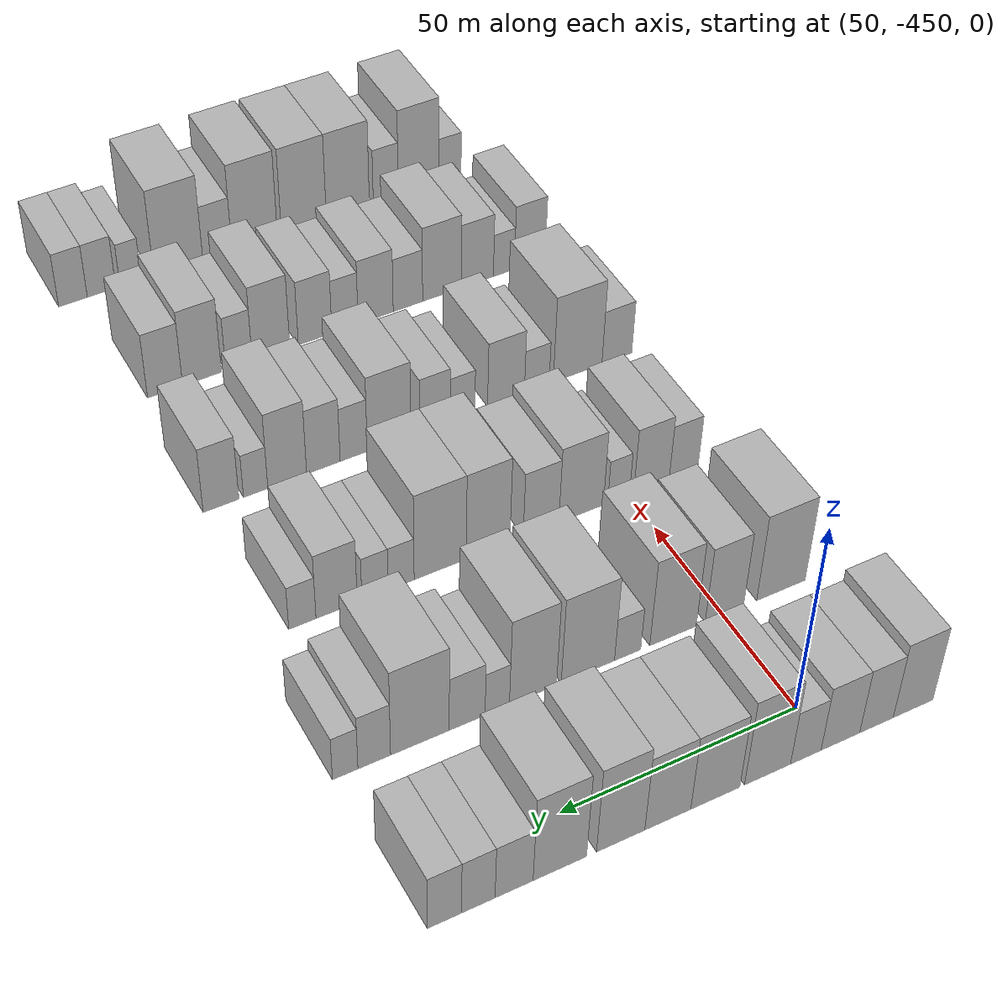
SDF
<sdf version="1.6">
 <world name="default">
  <model name="building_13">
   <static>1</static>
   <pose>50.0000 -469.1196 0 0.000000 0.000000 0.000000</pose>
   <link name="link">
    <pose>0 0 10.50 0 0 0</pose>
    <collision name="collision"><geometry><box><size>20.0000 8.9004 21.0000</size></box></geometry></collision>
    <visual name="visual">
     <cast_shadows>0</cast_shadows>
     <geometry><box><size>20.0000 8.9004 21.0000</size></box></geometry>
     <material>
      <script>
       <uri>model://HANNAS_wall/materials/scripts</uri>
       <uri>model://HANNAS_wall/materials/textures</uri>
       <name>vrc/HANNAS_wall</name>
      </script>
     </material>
    </visual>
   </link>
  </model>
  <model name="building_14">
   <static>1</static>
   <pose>50.0000 -460.9430 0 0.000000 0.000000 0.000000</pose>
   <link name="link">
    <pose>0 0 9.00 0 0 0</pose>
    <collision name="collision"><geometry><box><size>20.0000 7.4529 18.0000</size></box></geometry></collision>
    <visual name="visual">
     <cast_shadows>0</cast_shadows>
     <geometry><box><size>20.0000 7.4529 18.0000</size></box></geometry>
     <material>
      <script>
       <uri>model://HANNAS_wall/materials/scripts</uri>
       <uri>model://HANNAS_wall/materials/textures</uri>
       <name>vrc/HANNAS_wall</name>
      </script>
     </material>
    </visual>
   </link>
  </model>
  <model name="building_15">
   <static>1</static>
   <pose>50.0000 -452.9711 0 0.000000 0.000000 0.000000</pose>
   <link name="link">
    <pose>0 0 9.00 0 0 0</pose>
    <collision name="collision"><geometry><box><size>20.0000 8.4909 18.0000</size></box></geometry></collision>
    <visual name="visual">
     <cast_shadows>0</cast_shadows>
     <geometry><box><size>20.0000 8.4909 18.0000</size></box></geometry>
     <material>
      <script>
       <uri>model://HANNAS_wall/materials/scripts</uri>
       <uri>model://HANNAS_wall/materials/textures</uri>
       <name>vrc/HANNAS_wall</name>
      </script>
     </material>
    </visual>
   </link>
  </model>
  <model name="building_16">
   <static>1</static>
   <pose>50.0000 -445.4152 0 0.000000 0.000000 0.000000</pose>
   <link name="link">
    <pose>0 0 7.50 0 0 0</pose>
    <collision name="collision"><geometry><box><size>20.0000 6.6210 15.0000</size></box></geometry></collision>
    <visual name="visual">
     <cast_shadows>0</cast_shadows>
     <geometry><box><size>20.0000 6.6210 15.0000</size></box></geometry>
     <material>
      <script>
       <uri>model://HANNAS_wall/materials/scripts</uri>
       <uri>model://HANNAS_wall/materials/textures</uri>
       <name>vrc/HANNAS_wall</name>
      </script>
     </material>
    </visual>
   </link>
  </model>
  <model name="building_17">
   <static>1</static>
   <pose>50.0000 -437.1889 0 0.000000 0.000000 0.000000</pose>
   <link name="link">
    <pose>0 0 12.00 0 0 0</pose>
    <collision name="collision"><geometry><box><size>20.0000 9.8315 24.0000</size></box></geometry></collision>
    <visual name="visual">
     <cast_shadows>0</cast_shadows>
     <geometry><box><size>20.0000 9.8315 24.0000</size></box></geometry>
     <material>
      <script>
       <uri>model://HANNAS_wall/materials/scripts</uri>
       <uri>model://HANNAS_wall/materials/textures</uri>
       <name>vrc/HANNAS_wall</name>
      </script>
     </material>
    </visual>
   </link>
  </model>
  <model name="building_18">
   <static>1</static>
   <pose>50.0000 -426.1161 0 0.000000 0.000000 0.000000</pose>
   <link name="link">
    <pose>0 0 10.50 0 0 0</pose>
    <collision name="collision"><geometry><box><size>20.0000 10.3142 21.0000</size></box></geometry></collision>
    <visual name="visual">
     <cast_shadows>0</cast_shadows>
     <geometry><box><size>20.0000 10.3142 21.0000</size></box></geometry>
     <material>
      <script>
       <uri>model://HANNAS_wall/materials/scripts</uri>
       <uri>model://HANNAS_wall/materials/textures</uri>
       <name>vrc/HANNAS_wall</name>
      </script>
     </material>
    </visual>
   </link>
  </model>
  <model name="building_19">
   <static>1</static>
   <pose>50.0000 -416.2049 0 0.000000 0.000000 0.000000</pose>
   <link name="link">
    <pose>0 0 10.50 0 0 0</pose>
    <collision name="collision"><geometry><box><size>20.0000 9.5082 21.0000</size></box></geometry></collision>
    <visual name="visual">
     <cast_shadows>0</cast_shadows>
     <geometry><box><size>20.0000 9.5082 21.0000</size></box></geometry>
     <material>
      <script>
       <uri>model://HANNAS_wall/materials/scripts</uri>
       <uri>model://HANNAS_wall/materials/textures</uri>
       <name>vrc/HANNAS_wall</name>
      </script>
     </material>
    </visual>
   </link>
  </model>
  <model name="building_20">
   <static>1</static>
   <pose>50.0000 -406.5323 0 0.000000 0.000000 0.000000</pose>
   <link name="link">
    <pose>0 0 12.00 0 0 0</pose>
    <collision name="collision"><geometry><box><size>20.0000 9.8371 24.0000</size></box></geometry></collision>
    <visual name="visual">
     <cast_shadows>0</cast_shadows>
     <geometry><box><size>20.0000 9.8371 24.0000</size></box></geometry>
     <material>
      <script>
       <uri>model://HANNAS_wall/materials/scripts</uri>
       <uri>model://HANNAS_wall/materials/textures</uri>
       <name>vrc/HANNAS_wall</name>
      </script>
     </material>
    </visual>
   </link>
  </model>
  <model name="building_21">
   <static>1</static>
   <pose>50.0000 -394.2754 0 0.000000 0.000000 0.000000</pose>
   <link name="link">
    <pose>0 0 12.00 0 0 0</pose>
    <collision name="collision"><geometry><box><size>20.0000 10.6766 24.0000</size></box></geometry></collision>
    <visual name="visual">
     <cast_shadows>0</cast_shadows>
     <geometry><box><size>20.0000 10.6766 24.0000</size></box></geometry>
     <material>
      <script>
       <uri>model://HANNAS_wall/materials/scripts</uri>
       <uri>model://HANNAS_wall/materials/textures</uri>
       <name>vrc/HANNAS_wall</name>
      </script>
     </material>
    </visual>
   </link>
  </model>
  <model name="building_22">
   <static>1</static>
   <pose>50.0000 -385.2008 0 0.000000 0.000000 0.000000</pose>
   <link name="link">
    <pose>0 0 7.50 0 0 0</pose>
    <collision name="collision"><geometry><box><size>20.0000 7.4728 15.0000</size></box></geometry></collision>
    <visual name="visual">
     <cast_shadows>0</cast_shadows>
     <geometry><box><size>20.0000 7.4728 15.0000</size></box></geometry>
     <material>
      <script>
       <uri>model://HANNAS_wall/materials/scripts</uri>
       <uri>model://HANNAS_wall/materials/textures</uri>
       <name>vrc/HANNAS_wall</name>
      </script>
     </material>
    </visual>
   </link>
  </model>
  <model name="building_23">
   <static>1</static>
   <pose>50.0000 -378.1926 0 0.000000 0.000000 0.000000</pose>
   <link name="link">
    <pose>0 0 7.50 0 0 0</pose>
    <collision name="collision"><geometry><box><size>20.0000 6.5435 15.0000</size></box></geometry></collision>
    <visual name="visual">
     <cast_shadows>0</cast_shadows>
     <geometry><box><size>20.0000 6.5435 15.0000</size></box></geometry>
     <material>
      <script>
       <uri>model://HANNAS_wall/materials/scripts</uri>
       <uri>model://HANNAS_wall/materials/textures</uri>
       <name>vrc/HANNAS_wall</name>
      </script>
     </material>
    </visual>
   </link>
  </model>
  <model name="building_24">
   <static>1</static>
   <pose>50.0000 -371.6508 0 0.000000 0.000000 0.000000</pose>
   <link name="link">
    <pose>0 0 7.50 0 0 0</pose>
    <collision name="collision"><geometry><box><size>20.0000 6.5402 15.0000</size></box></geometry></collision>
    <visual name="visual">
     <cast_shadows>0</cast_shadows>
     <geometry><box><size>20.0000 6.5402 15.0000</size></box></geometry>
     <material>
      <script>
       <uri>model://HANNAS_wall/materials/scripts</uri>
       <uri>model://HANNAS_wall/materials/textures</uri>
       <name>vrc/HANNAS_wall</name>
      </script>
     </material>
    </visual>
   </link>
  </model>
  <model name="building_143">
   <static>1</static>
   <pose>85.0000 -463.2168 0 0.000000 0.000000 0.000000</pose>
   <link name="link">
    <pose>0 0 12.00 0 0 0</pose>
    <collision name="collision"><geometry><box><size>20.0000 11.1497 24.0000</size></box></geometry></collision>
    <visual name="visual">
     <cast_shadows>0</cast_shadows>
     <geometry><box><size>20.0000 11.1497 24.0000</size></box></geometry>
     <material>
      <script>
       <uri>model://HANNAS_wall/materials/scripts</uri>
       <uri>model://HANNAS_wall/materials/textures</uri>
       <name>vrc/HANNAS_wall</name>
      </script>
     </material>
    </visual>
   </link>
  </model>
  <model name="building_144">
   <static>1</static>
   <pose>85.0000 -450.3165 0 0.000000 0.000000 0.000000</pose>
   <link name="link">
    <pose>0 0 10.50 0 0 0</pose>
    <collision name="collision"><geometry><box><size>20.0000 8.6507 21.0000</size></box></geometry></collision>
    <visual name="visual">
     <cast_shadows>0</cast_shadows>
     <geometry><box><size>20.0000 8.6507 21.0000</size></box></geometry>
     <material>
      <script>
       <uri>model://HANNAS_wall/materials/scripts</uri>
       <uri>model://HANNAS_wall/materials/textures</uri>
       <name>vrc/HANNAS_wall</name>
      </script>
     </material>
    </visual>
   </link>
  </model>
  <model name="building_145">
   <static>1</static>
   <pose>85.0000 -438.8245 0 0.000000 0.000000 0.000000</pose>
   <link name="link">
    <pose>0 0 12.00 0 0 0</pose>
    <collision name="collision"><geometry><box><size>20.0000 10.3333 24.0000</size></box></geometry></collision>
    <visual name="visual">
     <cast_shadows>0</cast_shadows>
     <geometry><box><size>20.0000 10.3333 24.0000</size></box></geometry>
     <material>
      <script>
       <uri>model://HANNAS_wall/materials/scripts</uri>
       <uri>model://HANNAS_wall/materials/textures</uri>
       <name>vrc/HANNAS_wall</name>
      </script>
     </material>
    </visual>
   </link>
  </model>
  <model name="building_146">
   <static>1</static>
   <pose>85.0000 -428.7916 0 0.000000 0.000000 0.000000</pose>
   <link name="link">
    <pose>0 0 6.00 0 0 0</pose>
    <collision name="collision"><geometry><box><size>20.0000 5.7325 12.0000</size></box></geometry></collision>
    <visual name="visual">
     <cast_shadows>0</cast_shadows>
     <geometry><box><size>20.0000 5.7325 12.0000</size></box></geometry>
     <material>
      <script>
       <uri>model://HANNAS_wall/materials/scripts</uri>
       <uri>model://HANNAS_wall/materials/textures</uri>
       <name>vrc/HANNAS_wall</name>
      </script>
     </material>
    </visual>
   </link>
  </model>
  <model name="building_147">
   <static>1</static>
   <pose>85.0000 -420.1750 0 0.000000 0.000000 0.000000</pose>
   <link name="link">
    <pose>0 0 12.00 0 0 0</pose>
    <collision name="collision"><geometry><box><size>20.0000 11.5006 24.0000</size></box></geometry></collision>
    <visual name="visual">
     <cast_shadows>0</cast_shadows>
     <geometry><box><size>20.0000 11.5006 24.0000</size></box></geometry>
     <material>
      <script>
       <uri>model://HANNAS_wall/materials/scripts</uri>
       <uri>model://HANNAS_wall/materials/textures</uri>
       <name>vrc/HANNAS_wall</name>
      </script>
     </material>
    </visual>
   </link>
  </model>
  <model name="building_148">
   <static>1</static>
   <pose>85.0000 -408.4237 0 0.000000 0.000000 0.000000</pose>
   <link name="link">
    <pose>0 0 12.00 0 0 0</pose>
    <collision name="collision"><geometry><box><size>20.0000 10.0020 24.0000</size></box></geometry></collision>
    <visual name="visual">
     <cast_shadows>0</cast_shadows>
     <geometry><box><size>20.0000 10.0020 24.0000</size></box></geometry>
     <material>
      <script>
       <uri>model://HANNAS_wall/materials/scripts</uri>
       <uri>model://HANNAS_wall/materials/textures</uri>
       <name>vrc/HANNAS_wall</name>
      </script>
     </material>
    </visual>
   </link>
  </model>
  <model name="building_149">
   <static>1</static>
   <pose>85.0000 -400.8670 0 0.000000 0.000000 0.000000</pose>
   <link name="link">
    <pose>0 0 6.00 0 0 0</pose>
    <collision name="collision"><geometry><box><size>20.0000 5.1114 12.0000</size></box></geometry></collision>
    <visual name="visual">
     <cast_shadows>0</cast_shadows>
     <geometry><box><size>20.0000 5.1114 12.0000</size></box></geometry>
     <material>
      <script>
       <uri>model://HANNAS_wall/materials/scripts</uri>
       <uri>model://HANNAS_wall/materials/textures</uri>
       <name>vrc/HANNAS_wall</name>
      </script>
     </material>
    </visual>
   </link>
  </model>
  <model name="building_150">
   <static>1</static>
   <pose>85.0000 -394.5893 0 0.000000 0.000000 0.000000</pose>
   <link name="link">
    <pose>0 0 7.50 0 0 0</pose>
    <collision name="collision"><geometry><box><size>20.0000 7.4440 15.0000</size></box></geometry></collision>
    <visual name="visual">
     <cast_shadows>0</cast_shadows>
     <geometry><box><size>20.0000 7.4440 15.0000</size></box></geometry>
     <material>
      <script>
       <uri>model://HANNAS_wall/materials/scripts</uri>
       <uri>model://HANNAS_wall/materials/textures</uri>
       <name>vrc/HANNAS_wall</name>
      </script>
     </material>
    </visual>
   </link>
  </model>
  <model name="building_151">
   <static>1</static>
   <pose>85.0000 -384.8868 0 0.000000 0.000000 0.000000</pose>
   <link name="link">
    <pose>0 0 12.00 0 0 0</pose>
    <collision name="collision"><geometry><box><size>20.0000 11.9609 24.0000</size></box></geometry></collision>
    <visual name="visual">
     <cast_shadows>0</cast_shadows>
     <geometry><box><size>20.0000 11.9609 24.0000</size></box></geometry>
     <material>
      <script>
       <uri>model://HANNAS_wall/materials/scripts</uri>
       <uri>model://HANNAS_wall/materials/textures</uri>
       <name>vrc/HANNAS_wall</name>
      </script>
     </material>
    </visual>
   </link>
  </model>
  <model name="building_152">
   <static>1</static>
   <pose>85.0000 -375.6154 0 0.000000 0.000000 0.000000</pose>
   <link name="link">
    <pose>0 0 7.50 0 0 0</pose>
    <collision name="collision"><geometry><box><size>20.0000 6.5819 15.0000</size></box></geometry></collision>
    <visual name="visual">
     <cast_shadows>0</cast_shadows>
     <geometry><box><size>20.0000 6.5819 15.0000</size></box></geometry>
     <material>
      <script>
       <uri>model://HANNAS_wall/materials/scripts</uri>
       <uri>model://HANNAS_wall/materials/textures</uri>
       <name>vrc/HANNAS_wall</name>
      </script>
     </material>
    </visual>
   </link>
  </model>
  <model name="building_153">
   <static>1</static>
   <pose>85.0000 -369.7769 0 0.000000 0.000000 0.000000</pose>
   <link name="link">
    <pose>0 0 6.00 0 0 0</pose>
    <collision name="collision"><geometry><box><size>20.0000 5.0952 12.0000</size></box></geometry></collision>
    <visual name="visual">
     <cast_shadows>0</cast_shadows>
     <geometry><box><size>20.0000 5.0952 12.0000</size></box></geometry>
     <material>
      <script>
       <uri>model://HANNAS_wall/materials/scripts</uri>
       <uri>model://HANNAS_wall/materials/textures</uri>
       <name>vrc/HANNAS_wall</name>
      </script>
     </material>
    </visual>
   </link>
  </model>
  <model name="building_268">
   <static>1</static>
   <pose>120.0000 -462.8415 0 0.000000 0.000000 0.000000</pose>
   <link name="link">
    <pose>0 0 7.50 0 0 0</pose>
    <collision name="collision"><geometry><box><size>20.0000 6.8305 15.0000</size></box></geometry></collision>
    <visual name="visual">
     <cast_shadows>0</cast_shadows>
     <geometry><box><size>20.0000 6.8305 15.0000</size></box></geometry>
     <material>
      <script>
       <uri>model://HANNAS_wall/materials/scripts</uri>
       <uri>model://HANNAS_wall/materials/textures</uri>
       <name>vrc/HANNAS_wall</name>
      </script>
     </material>
    </visual>
   </link>
  </model>
  <model name="building_269">
   <static>1</static>
   <pose>120.0000 -455.2532 0 0.000000 0.000000 0.000000</pose>
   <link name="link">
    <pose>0 0 9.00 0 0 0</pose>
    <collision name="collision"><geometry><box><size>20.0000 8.3460 18.0000</size></box></geometry></collision>
    <visual name="visual">
     <cast_shadows>0</cast_shadows>
     <geometry><box><size>20.0000 8.3460 18.0000</size></box></geometry>
     <material>
      <script>
       <uri>model://HANNAS_wall/materials/scripts</uri>
       <uri>model://HANNAS_wall/materials/textures</uri>
       <name>vrc/HANNAS_wall</name>
      </script>
     </material>
    </visual>
   </link>
  </model>
  <model name="building_270">
   <static>1</static>
   <pose>120.0000 -447.5410 0 0.000000 0.000000 0.000000</pose>
   <link name="link">
    <pose>0 0 6.00 0 0 0</pose>
    <collision name="collision"><geometry><box><size>20.0000 5.0785 12.0000</size></box></geometry></collision>
    <visual name="visual">
     <cast_shadows>0</cast_shadows>
     <geometry><box><size>20.0000 5.0785 12.0000</size></box></geometry>
     <material>
      <script>
       <uri>model://HANNAS_wall/materials/scripts</uri>
       <uri>model://HANNAS_wall/materials/textures</uri>
       <name>vrc/HANNAS_wall</name>
      </script>
     </material>
    </visual>
   </link>
  </model>
  <model name="building_271">
   <static>1</static>
   <pose>120.0000 -438.8805 0 0.000000 0.000000 0.000000</pose>
   <link name="link">
    <pose>0 0 10.50 0 0 0</pose>
    <collision name="collision"><geometry><box><size>20.0000 10.2425 21.0000</size></box></geometry></collision>
    <visual name="visual">
     <cast_shadows>0</cast_shadows>
     <geometry><box><size>20.0000 10.2425 21.0000</size></box></geometry>
     <material>
      <script>
       <uri>model://HANNAS_wall/materials/scripts</uri>
       <uri>model://HANNAS_wall/materials/textures</uri>
       <name>vrc/HANNAS_wall</name>
      </script>
     </material>
    </visual>
   </link>
  </model>
  <model name="building_272">
   <static>1</static>
   <pose>120.0000 -429.7217 0 0.000000 0.000000 0.000000</pose>
   <link name="link">
    <pose>0 0 9.00 0 0 0</pose>
    <collision name="collision"><geometry><box><size>20.0000 8.0750 18.0000</size></box></geometry></collision>
    <visual name="visual">
     <cast_shadows>0</cast_shadows>
     <geometry><box><size>20.0000 8.0750 18.0000</size></box></geometry>
     <material>
      <script>
       <uri>model://HANNAS_wall/materials/scripts</uri>
       <uri>model://HANNAS_wall/materials/textures</uri>
       <name>vrc/HANNAS_wall</name>
      </script>
     </material>
    </visual>
   </link>
  </model>
  <model name="building_273">
   <static>1</static>
   <pose>120.0000 -417.7968 0 0.000000 0.000000 0.000000</pose>
   <link name="link">
    <pose>0 0 12.00 0 0 0</pose>
    <collision name="collision"><geometry><box><size>20.0000 9.7749 24.0000</size></box></geometry></collision>
    <visual name="visual">
     <cast_shadows>0</cast_shadows>
     <geometry><box><size>20.0000 9.7749 24.0000</size></box></geometry>
     <material>
      <script>
       <uri>model://HANNAS_wall/materials/scripts</uri>
       <uri>model://HANNAS_wall/materials/textures</uri>
       <name>vrc/HANNAS_wall</name>
      </script>
     </material>
    </visual>
   </link>
  </model>
  <model name="building_274">
   <static>1</static>
   <pose>120.0000 -407.2142 0 0.000000 0.000000 0.000000</pose>
   <link name="link">
    <pose>0 0 12.00 0 0 0</pose>
    <collision name="collision"><geometry><box><size>20.0000 11.3903 24.0000</size></box></geometry></collision>
    <visual name="visual">
     <cast_shadows>0</cast_shadows>
     <geometry><box><size>20.0000 11.3903 24.0000</size></box></geometry>
     <material>
      <script>
       <uri>model://HANNAS_wall/materials/scripts</uri>
       <uri>model://HANNAS_wall/materials/textures</uri>
       <name>vrc/HANNAS_wall</name>
      </script>
     </material>
    </visual>
   </link>
  </model>
  <model name="building_275">
   <static>1</static>
   <pose>120.0000 -398.7075 0 0.000000 0.000000 0.000000</pose>
   <link name="link">
    <pose>0 0 6.00 0 0 0</pose>
    <collision name="collision"><geometry><box><size>20.0000 5.6232 12.0000</size></box></geometry></collision>
    <visual name="visual">
     <cast_shadows>0</cast_shadows>
     <geometry><box><size>20.0000 5.6232 12.0000</size></box></geometry>
     <material>
      <script>
       <uri>model://HANNAS_wall/materials/scripts</uri>
       <uri>model://HANNAS_wall/materials/textures</uri>
       <name>vrc/HANNAS_wall</name>
      </script>
     </material>
    </visual>
   </link>
  </model>
  <model name="building_276">
   <static>1</static>
   <pose>120.0000 -393.0673 0 0.000000 0.000000 0.000000</pose>
   <link name="link">
    <pose>0 0 6.00 0 0 0</pose>
    <collision name="collision"><geometry><box><size>20.0000 5.6572 12.0000</size></box></geometry></collision>
    <visual name="visual">
     <cast_shadows>0</cast_shadows>
     <geometry><box><size>20.0000 5.6572 12.0000</size></box></geometry>
     <material>
      <script>
       <uri>model://HANNAS_wall/materials/scripts</uri>
       <uri>model://HANNAS_wall/materials/textures</uri>
       <name>vrc/HANNAS_wall</name>
      </script>
     </material>
    </visual>
   </link>
  </model>
  <model name="building_277">
   <static>1</static>
   <pose>120.0000 -384.8574 0 0.000000 0.000000 0.000000</pose>
   <link name="link">
    <pose>0 0 9.00 0 0 0</pose>
    <collision name="collision"><geometry><box><size>20.0000 8.7626 18.0000</size></box></geometry></collision>
    <visual name="visual">
     <cast_shadows>0</cast_shadows>
     <geometry><box><size>20.0000 8.7626 18.0000</size></box></geometry>
     <material>
      <script>
       <uri>model://HANNAS_wall/materials/scripts</uri>
       <uri>model://HANNAS_wall/materials/textures</uri>
       <name>vrc/HANNAS_wall</name>
      </script>
     </material>
    </visual>
   </link>
  </model>
  <model name="building_278">
   <static>1</static>
   <pose>120.0000 -377.6113 0 0.000000 0.000000 0.000000</pose>
   <link name="link">
    <pose>0 0 6.00 0 0 0</pose>
    <collision name="collision"><geometry><box><size>20.0000 5.7295 12.0000</size></box></geometry></collision>
    <visual name="visual">
     <cast_shadows>0</cast_shadows>
     <geometry><box><size>20.0000 5.7295 12.0000</size></box></geometry>
     <material>
      <script>
       <uri>model://HANNAS_wall/materials/scripts</uri>
       <uri>model://HANNAS_wall/materials/textures</uri>
       <name>vrc/HANNAS_wall</name>
      </script>
     </material>
    </visual>
   </link>
  </model>
  <model name="building_390">
   <static>1</static>
   <pose>155.0000 -467.8347 0 0.000000 0.000000 0.000000</pose>
   <link name="link">
    <pose>0 0 7.50 0 0 0</pose>
    <collision name="collision"><geometry><box><size>20.0000 7.3731 15.0000</size></box></geometry></collision>
    <visual name="visual">
     <cast_shadows>0</cast_shadows>
     <geometry><box><size>20.0000 7.3731 15.0000</size></box></geometry>
     <material>
      <script>
       <uri>model://HANNAS_wall/materials/scripts</uri>
       <uri>model://HANNAS_wall/materials/textures</uri>
       <name>vrc/HANNAS_wall</name>
      </script>
     </material>
    </visual>
   </link>
  </model>
  <model name="building_391">
   <static>1</static>
   <pose>155.0000 -458.2091 0 0.000000 0.000000 0.000000</pose>
   <link name="link">
    <pose>0 0 12.00 0 0 0</pose>
    <collision name="collision"><geometry><box><size>20.0000 11.8781 24.0000</size></box></geometry></collision>
    <visual name="visual">
     <cast_shadows>0</cast_shadows>
     <geometry><box><size>20.0000 11.8781 24.0000</size></box></geometry>
     <material>
      <script>
       <uri>model://HANNAS_wall/materials/scripts</uri>
       <uri>model://HANNAS_wall/materials/textures</uri>
       <name>vrc/HANNAS_wall</name>
      </script>
     </material>
    </visual>
   </link>
  </model>
  <model name="building_392">
   <static>1</static>
   <pose>155.0000 -448.2878 0 0.000000 0.000000 0.000000</pose>
   <link name="link">
    <pose>0 0 6.00 0 0 0</pose>
    <collision name="collision"><geometry><box><size>20.0000 5.9645 12.0000</size></box></geometry></collision>
    <visual name="visual">
     <cast_shadows>0</cast_shadows>
     <geometry><box><size>20.0000 5.9645 12.0000</size></box></geometry>
     <material>
      <script>
       <uri>model://HANNAS_wall/materials/scripts</uri>
       <uri>model://HANNAS_wall/materials/textures</uri>
       <name>vrc/HANNAS_wall</name>
      </script>
     </material>
    </visual>
   </link>
  </model>
  <model name="building_393">
   <static>1</static>
   <pose>155.0000 -440.9150 0 0.000000 0.000000 0.000000</pose>
   <link name="link">
    <pose>0 0 9.00 0 0 0</pose>
    <collision name="collision"><geometry><box><size>20.0000 8.7811 18.0000</size></box></geometry></collision>
    <visual name="visual">
     <cast_shadows>0</cast_shadows>
     <geometry><box><size>20.0000 8.7811 18.0000</size></box></geometry>
     <material>
      <script>
       <uri>model://HANNAS_wall/materials/scripts</uri>
       <uri>model://HANNAS_wall/materials/textures</uri>
       <name>vrc/HANNAS_wall</name>
      </script>
     </material>
    </visual>
   </link>
  </model>
  <model name="building_394">
   <static>1</static>
   <pose>155.0000 -430.6221 0 0.000000 0.000000 0.000000</pose>
   <link name="link">
    <pose>0 0 6.00 0 0 0</pose>
    <collision name="collision"><geometry><box><size>20.0000 5.8048 12.0000</size></box></geometry></collision>
    <visual name="visual">
     <cast_shadows>0</cast_shadows>
     <geometry><box><size>20.0000 5.8048 12.0000</size></box></geometry>
     <material>
      <script>
       <uri>model://HANNAS_wall/materials/scripts</uri>
       <uri>model://HANNAS_wall/materials/textures</uri>
       <name>vrc/HANNAS_wall</name>
      </script>
     </material>
    </visual>
   </link>
  </model>
  <model name="building_395">
   <static>1</static>
   <pose>155.0000 -424.1557 0 0.000000 0.000000 0.000000</pose>
   <link name="link">
    <pose>0 0 7.50 0 0 0</pose>
    <collision name="collision"><geometry><box><size>20.0000 7.1279 15.0000</size></box></geometry></collision>
    <visual name="visual">
     <cast_shadows>0</cast_shadows>
     <geometry><box><size>20.0000 7.1279 15.0000</size></box></geometry>
     <material>
      <script>
       <uri>model://HANNAS_wall/materials/scripts</uri>
       <uri>model://HANNAS_wall/materials/textures</uri>
       <name>vrc/HANNAS_wall</name>
      </script>
     </material>
    </visual>
   </link>
  </model>
  <model name="building_396">
   <static>1</static>
   <pose>155.0000 -413.5880 0 0.000000 0.000000 0.000000</pose>
   <link name="link">
    <pose>0 0 10.50 0 0 0</pose>
    <collision name="collision"><geometry><box><size>20.0000 10.0075 21.0000</size></box></geometry></collision>
    <visual name="visual">
     <cast_shadows>0</cast_shadows>
     <geometry><box><size>20.0000 10.0075 21.0000</size></box></geometry>
     <material>
      <script>
       <uri>model://HANNAS_wall/materials/scripts</uri>
       <uri>model://HANNAS_wall/materials/textures</uri>
       <name>vrc/HANNAS_wall</name>
      </script>
     </material>
    </visual>
   </link>
  </model>
  <model name="building_397">
   <static>1</static>
   <pose>155.0000 -405.5013 0 0.000000 0.000000 0.000000</pose>
   <link name="link">
    <pose>0 0 7.50 0 0 0</pose>
    <collision name="collision"><geometry><box><size>20.0000 6.1658 15.0000</size></box></geometry></collision>
    <visual name="visual">
     <cast_shadows>0</cast_shadows>
     <geometry><box><size>20.0000 6.1658 15.0000</size></box></geometry>
     <material>
      <script>
       <uri>model://HANNAS_wall/materials/scripts</uri>
       <uri>model://HANNAS_wall/materials/textures</uri>
       <name>vrc/HANNAS_wall</name>
      </script>
     </material>
    </visual>
   </link>
  </model>
  <model name="building_398">
   <static>1</static>
   <pose>155.0000 -398.6455 0 0.000000 0.000000 0.000000</pose>
   <link name="link">
    <pose>0 0 9.00 0 0 0</pose>
    <collision name="collision"><geometry><box><size>20.0000 7.5459 18.0000</size></box></geometry></collision>
    <visual name="visual">
     <cast_shadows>0</cast_shadows>
     <geometry><box><size>20.0000 7.5459 18.0000</size></box></geometry>
     <material>
      <script>
       <uri>model://HANNAS_wall/materials/scripts</uri>
       <uri>model://HANNAS_wall/materials/textures</uri>
       <name>vrc/HANNAS_wall</name>
      </script>
     </material>
    </visual>
   </link>
  </model>
  <model name="building_399">
   <static>1</static>
   <pose>155.0000 -390.5653 0 0.000000 0.000000 0.000000</pose>
   <link name="link">
    <pose>0 0 10.50 0 0 0</pose>
    <collision name="collision"><geometry><box><size>20.0000 8.6145 21.0000</size></box></geometry></collision>
    <visual name="visual">
     <cast_shadows>0</cast_shadows>
     <geometry><box><size>20.0000 8.6145 21.0000</size></box></geometry>
     <material>
      <script>
       <uri>model://HANNAS_wall/materials/scripts</uri>
       <uri>model://HANNAS_wall/materials/textures</uri>
       <name>vrc/HANNAS_wall</name>
      </script>
     </material>
    </visual>
   </link>
  </model>
  <model name="building_400">
   <static>1</static>
   <pose>155.0000 -383.5804 0 0.000000 0.000000 0.000000</pose>
   <link name="link">
    <pose>0 0 6.00 0 0 0</pose>
    <collision name="collision"><geometry><box><size>20.0000 5.3552 12.0000</size></box></geometry></collision>
    <visual name="visual">
     <cast_shadows>0</cast_shadows>
     <geometry><box><size>20.0000 5.3552 12.0000</size></box></geometry>
     <material>
      <script>
       <uri>model://HANNAS_wall/materials/scripts</uri>
       <uri>model://HANNAS_wall/materials/textures</uri>
       <name>vrc/HANNAS_wall</name>
      </script>
     </material>
    </visual>
   </link>
  </model>
  <model name="building_401">
   <static>1</static>
   <pose>155.0000 -376.0094 0 0.000000 0.000000 0.000000</pose>
   <link name="link">
    <pose>0 0 9.00 0 0 0</pose>
    <collision name="collision"><geometry><box><size>20.0000 7.7868 18.0000</size></box></geometry></collision>
    <visual name="visual">
     <cast_shadows>0</cast_shadows>
     <geometry><box><size>20.0000 7.7868 18.0000</size></box></geometry>
     <material>
      <script>
       <uri>model://HANNAS_wall/materials/scripts</uri>
       <uri>model://HANNAS_wall/materials/textures</uri>
       <name>vrc/HANNAS_wall</name>
      </script>
     </material>
    </visual>
   </link>
  </model>
  <model name="building_518">
   <static>1</static>
   <pose>190.0000 -466.0492 0 0.000000 0.000000 0.000000</pose>
   <link name="link">
    <pose>0 0 9.00 0 0 0</pose>
    <collision name="collision"><geometry><box><size>20.0000 7.7904 18.0000</size></box></geometry></collision>
    <visual name="visual">
     <cast_shadows>0</cast_shadows>
     <geometry><box><size>20.0000 7.7904 18.0000</size></box></geometry>
     <material>
      <script>
       <uri>model://HANNAS_wall/materials/scripts</uri>
       <uri>model://HANNAS_wall/materials/textures</uri>
       <name>vrc/HANNAS_wall</name>
      </script>
     </material>
    </visual>
   </link>
  </model>
  <model name="building_519">
   <static>1</static>
   <pose>190.0000 -459.5002 0 0.000000 0.000000 0.000000</pose>
   <link name="link">
    <pose>0 0 6.00 0 0 0</pose>
    <collision name="collision"><geometry><box><size>20.0000 5.3077 12.0000</size></box></geometry></collision>
    <visual name="visual">
     <cast_shadows>0</cast_shadows>
     <geometry><box><size>20.0000 5.3077 12.0000</size></box></geometry>
     <material>
      <script>
       <uri>model://HANNAS_wall/materials/scripts</uri>
       <uri>model://HANNAS_wall/materials/textures</uri>
       <name>vrc/HANNAS_wall</name>
      </script>
     </material>
    </visual>
   </link>
  </model>
  <model name="building_520">
   <static>1</static>
   <pose>190.0000 -452.8224 0 0.000000 0.000000 0.000000</pose>
   <link name="link">
    <pose>0 0 9.00 0 0 0</pose>
    <collision name="collision"><geometry><box><size>20.0000 8.0479 18.0000</size></box></geometry></collision>
    <visual name="visual">
     <cast_shadows>0</cast_shadows>
     <geometry><box><size>20.0000 8.0479 18.0000</size></box></geometry>
     <material>
      <script>
       <uri>model://HANNAS_wall/materials/scripts</uri>
       <uri>model://HANNAS_wall/materials/textures</uri>
       <name>vrc/HANNAS_wall</name>
      </script>
     </material>
    </visual>
   </link>
  </model>
  <model name="building_521">
   <static>1</static>
   <pose>190.0000 -444.0203 0 0.000000 0.000000 0.000000</pose>
   <link name="link">
    <pose>0 0 10.50 0 0 0</pose>
    <collision name="collision"><geometry><box><size>20.0000 9.5562 21.0000</size></box></geometry></collision>
    <visual name="visual">
     <cast_shadows>0</cast_shadows>
     <geometry><box><size>20.0000 9.5562 21.0000</size></box></geometry>
     <material>
      <script>
       <uri>model://HANNAS_wall/materials/scripts</uri>
       <uri>model://HANNAS_wall/materials/textures</uri>
       <name>vrc/HANNAS_wall</name>
      </script>
     </material>
    </visual>
   </link>
  </model>
  <model name="building_522">
   <static>1</static>
   <pose>190.0000 -435.6457 0 0.000000 0.000000 0.000000</pose>
   <link name="link">
    <pose>0 0 7.50 0 0 0</pose>
    <collision name="collision"><geometry><box><size>20.0000 7.1931 15.0000</size></box></geometry></collision>
    <visual name="visual">
     <cast_shadows>0</cast_shadows>
     <geometry><box><size>20.0000 7.1931 15.0000</size></box></geometry>
     <material>
      <script>
       <uri>model://HANNAS_wall/materials/scripts</uri>
       <uri>model://HANNAS_wall/materials/textures</uri>
       <name>vrc/HANNAS_wall</name>
      </script>
     </material>
    </visual>
   </link>
  </model>
  <model name="building_523">
   <static>1</static>
   <pose>190.0000 -427.8038 0 0.000000 0.000000 0.000000</pose>
   <link name="link">
    <pose>0 0 9.00 0 0 0</pose>
    <collision name="collision"><geometry><box><size>20.0000 8.4907 18.0000</size></box></geometry></collision>
    <visual name="visual">
     <cast_shadows>0</cast_shadows>
     <geometry><box><size>20.0000 8.4907 18.0000</size></box></geometry>
     <material>
      <script>
       <uri>model://HANNAS_wall/materials/scripts</uri>
       <uri>model://HANNAS_wall/materials/textures</uri>
       <name>vrc/HANNAS_wall</name>
      </script>
     </material>
    </visual>
   </link>
  </model>
  <model name="building_524">
   <static>1</static>
   <pose>190.0000 -420.4179 0 0.000000 0.000000 0.000000</pose>
   <link name="link">
    <pose>0 0 7.50 0 0 0</pose>
    <collision name="collision"><geometry><box><size>20.0000 6.2810 15.0000</size></box></geometry></collision>
    <visual name="visual">
     <cast_shadows>0</cast_shadows>
     <geometry><box><size>20.0000 6.2810 15.0000</size></box></geometry>
     <material>
      <script>
       <uri>model://HANNAS_wall/materials/scripts</uri>
       <uri>model://HANNAS_wall/materials/textures</uri>
       <name>vrc/HANNAS_wall</name>
      </script>
     </material>
    </visual>
   </link>
  </model>
  <model name="building_525">
   <static>1</static>
   <pose>190.0000 -413.2837 0 0.000000 0.000000 0.000000</pose>
   <link name="link">
    <pose>0 0 9.00 0 0 0</pose>
    <collision name="collision"><geometry><box><size>20.0000 7.9874 18.0000</size></box></geometry></collision>
    <visual name="visual">
     <cast_shadows>0</cast_shadows>
     <geometry><box><size>20.0000 7.9874 18.0000</size></box></geometry>
     <material>
      <script>
       <uri>model://HANNAS_wall/materials/scripts</uri>
       <uri>model://HANNAS_wall/materials/textures</uri>
       <name>vrc/HANNAS_wall</name>
      </script>
     </material>
    </visual>
   </link>
  </model>
  <model name="building_526">
   <static>1</static>
   <pose>190.0000 -402.8905 0 0.000000 0.000000 0.000000</pose>
   <link name="link">
    <pose>0 0 10.50 0 0 0</pose>
    <collision name="collision"><geometry><box><size>20.0000 8.7990 21.0000</size></box></geometry></collision>
    <visual name="visual">
     <cast_shadows>0</cast_shadows>
     <geometry><box><size>20.0000 8.7990 21.0000</size></box></geometry>
     <material>
      <script>
       <uri>model://HANNAS_wall/materials/scripts</uri>
       <uri>model://HANNAS_wall/materials/textures</uri>
       <name>vrc/HANNAS_wall</name>
      </script>
     </material>
    </visual>
   </link>
  </model>
  <model name="building_527">
   <static>1</static>
   <pose>190.0000 -395.4202 0 0.000000 0.000000 0.000000</pose>
   <link name="link">
    <pose>0 0 7.50 0 0 0</pose>
    <collision name="collision"><geometry><box><size>20.0000 6.1414 15.0000</size></box></geometry></collision>
    <visual name="visual">
     <cast_shadows>0</cast_shadows>
     <geometry><box><size>20.0000 6.1414 15.0000</size></box></geometry>
     <material>
      <script>
       <uri>model://HANNAS_wall/materials/scripts</uri>
       <uri>model://HANNAS_wall/materials/textures</uri>
       <name>vrc/HANNAS_wall</name>
      </script>
     </material>
    </visual>
   </link>
  </model>
  <model name="building_528">
   <static>1</static>
   <pose>190.0000 -386.9017 0 0.000000 0.000000 0.000000</pose>
   <link name="link">
    <pose>0 0 10.50 0 0 0</pose>
    <collision name="collision"><geometry><box><size>20.0000 8.8956 21.0000</size></box></geometry></collision>
    <visual name="visual">
     <cast_shadows>0</cast_shadows>
     <geometry><box><size>20.0000 8.8956 21.0000</size></box></geometry>
     <material>
      <script>
       <uri>model://HANNAS_wall/materials/scripts</uri>
       <uri>model://HANNAS_wall/materials/textures</uri>
       <name>vrc/HANNAS_wall</name>
      </script>
     </material>
    </visual>
   </link>
  </model>
  <model name="building_529">
   <static>1</static>
   <pose>190.0000 -378.4722 0 0.000000 0.000000 0.000000</pose>
   <link name="link">
    <pose>0 0 9.00 0 0 0</pose>
    <collision name="collision"><geometry><box><size>20.0000 7.9636 18.0000</size></box></geometry></collision>
    <visual name="visual">
     <cast_shadows>0</cast_shadows>
     <geometry><box><size>20.0000 7.9636 18.0000</size></box></geometry>
     <material>
      <script>
       <uri>model://HANNAS_wall/materials/scripts</uri>
       <uri>model://HANNAS_wall/materials/textures</uri>
       <name>vrc/HANNAS_wall</name>
      </script>
     </material>
    </visual>
   </link>
  </model>
  <model name="building_648">
   <static>1</static>
   <pose>225.0000 -464.3582 0 0.000000 0.000000 0.000000</pose>
   <link name="link">
    <pose>0 0 6.00 0 0 0</pose>
    <collision name="collision"><geometry><box><size>20.0000 5.7094 12.0000</size></box></geometry></collision>
    <visual name="visual">
     <cast_shadows>0</cast_shadows>
     <geometry><box><size>20.0000 5.7094 12.0000</size></box></geometry>
     <material>
      <script>
       <uri>model://HANNAS_wall/materials/scripts</uri>
       <uri>model://HANNAS_wall/materials/textures</uri>
       <name>vrc/HANNAS_wall</name>
      </script>
     </material>
    </visual>
   </link>
  </model>
  <model name="building_649">
   <static>1</static>
   <pose>225.0000 -456.1962 0 0.000000 0.000000 0.000000</pose>
   <link name="link">
    <pose>0 0 12.00 0 0 0</pose>
    <collision name="collision"><geometry><box><size>20.0000 10.6147 24.0000</size></box></geometry></collision>
    <visual name="visual">
     <cast_shadows>0</cast_shadows>
     <geometry><box><size>20.0000 10.6147 24.0000</size></box></geometry>
     <material>
      <script>
       <uri>model://HANNAS_wall/materials/scripts</uri>
       <uri>model://HANNAS_wall/materials/textures</uri>
       <name>vrc/HANNAS_wall</name>
      </script>
     </material>
    </visual>
   </link>
  </model>
  <model name="building_650">
   <static>1</static>
   <pose>225.0000 -447.6826 0 0.000000 0.000000 0.000000</pose>
   <link name="link">
    <pose>0 0 7.50 0 0 0</pose>
    <collision name="collision"><geometry><box><size>20.0000 6.4124 15.0000</size></box></geometry></collision>
    <visual name="visual">
     <cast_shadows>0</cast_shadows>
     <geometry><box><size>20.0000 6.4124 15.0000</size></box></geometry>
     <material>
      <script>
       <uri>model://HANNAS_wall/materials/scripts</uri>
       <uri>model://HANNAS_wall/materials/textures</uri>
       <name>vrc/HANNAS_wall</name>
      </script>
     </material>
    </visual>
   </link>
  </model>
  <model name="building_651">
   <static>1</static>
   <pose>225.0000 -438.0227 0 0.000000 0.000000 0.000000</pose>
   <link name="link">
    <pose>0 0 12.00 0 0 0</pose>
    <collision name="collision"><geometry><box><size>20.0000 10.9076 24.0000</size></box></geometry></collision>
    <visual name="visual">
     <cast_shadows>0</cast_shadows>
     <geometry><box><size>20.0000 10.9076 24.0000</size></box></geometry>
     <material>
      <script>
       <uri>model://HANNAS_wall/materials/scripts</uri>
       <uri>model://HANNAS_wall/materials/textures</uri>
       <name>vrc/HANNAS_wall</name>
      </script>
     </material>
    </visual>
   </link>
  </model>
  <model name="building_652">
   <static>1</static>
   <pose>225.0000 -426.9519 0 0.000000 0.000000 0.000000</pose>
   <link name="link">
    <pose>0 0 12.00 0 0 0</pose>
    <collision name="collision"><geometry><box><size>20.0000 11.2341 24.0000</size></box></geometry></collision>
    <visual name="visual">
     <cast_shadows>0</cast_shadows>
     <geometry><box><size>20.0000 11.2341 24.0000</size></box></geometry>
     <material>
      <script>
       <uri>model://HANNAS_wall/materials/scripts</uri>
       <uri>model://HANNAS_wall/materials/textures</uri>
       <name>vrc/HANNAS_wall</name>
      </script>
     </material>
    </visual>
   </link>
  </model>
  <model name="building_653">
   <static>1</static>
   <pose>225.0000 -414.7431 0 0.000000 0.000000 0.000000</pose>
   <link name="link">
    <pose>0 0 12.00 0 0 0</pose>
    <collision name="collision"><geometry><box><size>20.0000 11.1835 24.0000</size></box></geometry></collision>
    <visual name="visual">
     <cast_shadows>0</cast_shadows>
     <geometry><box><size>20.0000 11.1835 24.0000</size></box></geometry>
     <material>
      <script>
       <uri>model://HANNAS_wall/materials/scripts</uri>
       <uri>model://HANNAS_wall/materials/textures</uri>
       <name>vrc/HANNAS_wall</name>
      </script>
     </material>
    </visual>
   </link>
  </model>
  <model name="building_654">
   <static>1</static>
   <pose>225.0000 -405.6064 0 0.000000 0.000000 0.000000</pose>
   <link name="link">
    <pose>0 0 7.50 0 0 0</pose>
    <collision name="collision"><geometry><box><size>20.0000 7.0899 15.0000</size></box></geometry></collision>
    <visual name="visual">
     <cast_shadows>0</cast_shadows>
     <geometry><box><size>20.0000 7.0899 15.0000</size></box></geometry>
     <material>
      <script>
       <uri>model://HANNAS_wall/materials/scripts</uri>
       <uri>model://HANNAS_wall/materials/textures</uri>
       <name>vrc/HANNAS_wall</name>
      </script>
     </material>
    </visual>
   </link>
  </model>
  <model name="building_655">
   <static>1</static>
   <pose>225.0000 -396.1816 0 0.000000 0.000000 0.000000</pose>
   <link name="link">
    <pose>0 0 12.00 0 0 0</pose>
    <collision name="collision"><geometry><box><size>20.0000 11.7597 24.0000</size></box></geometry></collision>
    <visual name="visual">
     <cast_shadows>0</cast_shadows>
     <geometry><box><size>20.0000 11.7597 24.0000</size></box></geometry>
     <material>
      <script>
       <uri>model://HANNAS_wall/materials/scripts</uri>
       <uri>model://HANNAS_wall/materials/textures</uri>
       <name>vrc/HANNAS_wall</name>
      </script>
     </material>
    </visual>
   </link>
  </model>
  <model name="building_656">
   <static>1</static>
   <pose>225.0000 -384.7971 0 0.000000 0.000000 0.000000</pose>
   <link name="link">
    <pose>0 0 6.00 0 0 0</pose>
    <collision name="collision"><geometry><box><size>20.0000 5.0093 12.0000</size></box></geometry></collision>
    <visual name="visual">
     <cast_shadows>0</cast_shadows>
     <geometry><box><size>20.0000 5.0093 12.0000</size></box></geometry>
     <material>
      <script>
       <uri>model://HANNAS_wall/materials/scripts</uri>
       <uri>model://HANNAS_wall/materials/textures</uri>
       <name>vrc/HANNAS_wall</name>
      </script>
     </material>
    </visual>
   </link>
  </model>
  <model name="building_657">
   <static>1</static>
   <pose>225.0000 -377.9492 0 0.000000 0.000000 0.000000</pose>
   <link name="link">
    <pose>0 0 7.50 0 0 0</pose>
    <collision name="collision"><geometry><box><size>20.0000 6.6865 15.0000</size></box></geometry></collision>
    <visual name="visual">
     <cast_shadows>0</cast_shadows>
     <geometry><box><size>20.0000 6.6865 15.0000</size></box></geometry>
     <material>
      <script>
       <uri>model://HANNAS_wall/materials/scripts</uri>
       <uri>model://HANNAS_wall/materials/textures</uri>
       <name>vrc/HANNAS_wall</name>
      </script>
     </material>
    </visual>
   </link>
  </model>
  <model name="building_658">
   <static>1</static>
   <pose>225.0000 -371.2678 0 0.000000 0.000000 0.000000</pose>
   <link name="link">
    <pose>0 0 7.50 0 0 0</pose>
    <collision name="collision"><geometry><box><size>20.0000 6.6763 15.0000</size></box></geometry></collision>
    <visual name="visual">
     <cast_shadows>0</cast_shadows>
     <geometry><box><size>20.0000 6.6763 15.0000</size></box></geometry>
     <material>
      <script>
       <uri>model://HANNAS_wall/materials/scripts</uri>
       <uri>model://HANNAS_wall/materials/textures</uri>
       <name>vrc/HANNAS_wall</name>
      </script>
     </material>
    </visual>
   </link>
  </model>
 </world>
</sdf>
